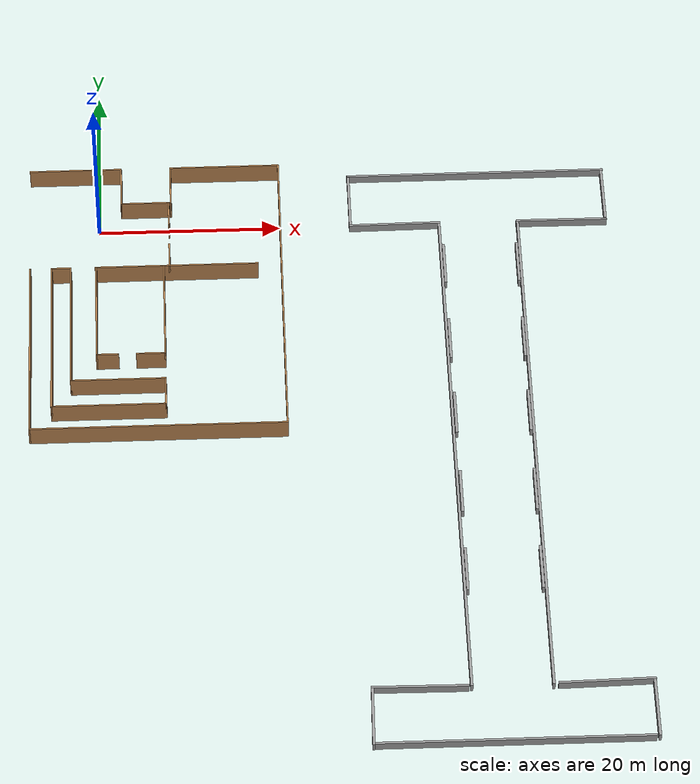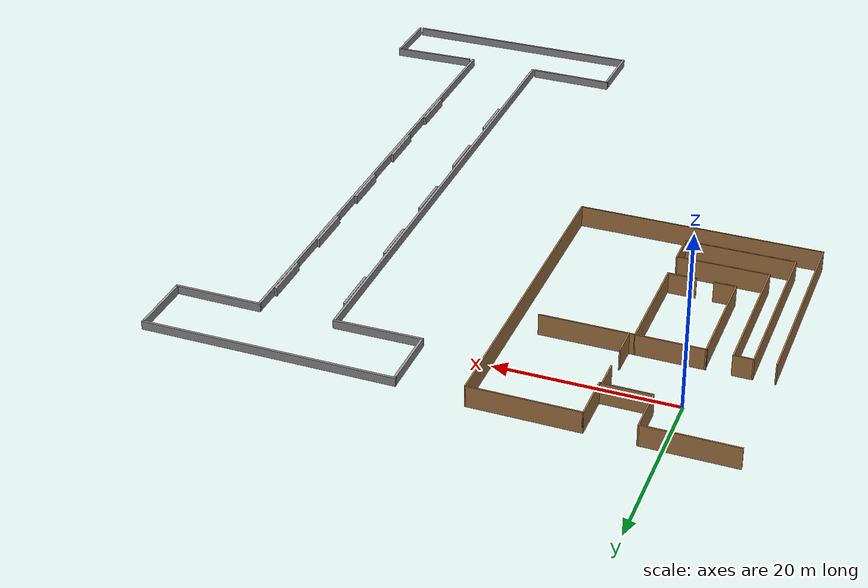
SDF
<sdf version="1.7">
 <world name="default">
  <gravity>0 0 -9.8</gravity>
  <magnetic_field>6e-06 2.3e-05 -4.2e-05</magnetic_field>
  <atmosphere type="adiabatic"/>
  <physics name="default_physics" default="0" type="ode">
   <max_step_size>0.001</max_step_size>
   <real_time_factor>1</real_time_factor>
   <real_time_update_rate>1000</real_time_update_rate>
  </physics>
  <scene>
   <ambient>0.4 0.4 0.4 1</ambient>
   <background>0.7 0.7 0.7 1</background>
   <shadows>1</shadows>
   <grid>0</grid>
   <origin_visual>0</origin_visual>
  </scene>
  <spherical_coordinates>
   <surface_model>EARTH_WGS84</surface_model>
   <latitude_deg>0</latitude_deg>
   <longitude_deg>0</longitude_deg>
   <elevation>0</elevation>
   <heading_deg>0</heading_deg>
  </spherical_coordinates>
  <light name="RetailShop_CeilingLight_001" type="point">
   <pose>2.77442 -3.62815 3.17847 0 -0 0</pose>
   <diffuse>0.5 0.5 0.5 1</diffuse>
   <specular>0.1 0.1 0.1 1</specular>
   <attenuation>
    <range>20</range>
    <constant>0.32</constant>
    <linear>0.01</linear>
    <quadratic>0.03</quadratic>
   </attenuation>
   <cast_shadows>0</cast_shadows>
   <direction>0 0 -1</direction>
   <spot><inner_angle>0</inner_angle><outer_angle>0</outer_angle><falloff>0</falloff></spot>
  </light>
  <light name="RetailShop_CeilingLight_002" type="point">
   <pose>5.38399 -5.38371 3.17847 0 -0 0</pose>
   <diffuse>0.5 0.5 0.5 1</diffuse>
   <specular>0.1 0.1 0.1 1</specular>
   <attenuation>
    <range>20</range>
    <constant>0.32</constant>
    <linear>0.01</linear>
    <quadratic>0.03</quadratic>
   </attenuation>
   <cast_shadows>0</cast_shadows>
   <direction>0 0 -1</direction>
   <spot><inner_angle>0</inner_angle><outer_angle>0</outer_angle><falloff>0</falloff></spot>
  </light>
  <light name="RetailShop_CeilingLight_003" type="point">
   <pose>5.38399 0.04192 3.17847 0 -0 0</pose>
   <diffuse>0.5 0.5 0.5 1</diffuse>
   <specular>0.1 0.1 0.1 1</specular>
   <attenuation>
    <range>20</range>
    <constant>0.32</constant>
    <linear>0.01</linear>
    <quadratic>0.03</quadratic>
   </attenuation>
   <cast_shadows>0</cast_shadows>
   <direction>0 0 -1</direction>
   <spot><inner_angle>0</inner_angle><outer_angle>0</outer_angle><falloff>0</falloff></spot>
  </light>
  <light name="RetailShop_CeilingLight_004" type="point">
   <pose>-3.21067 -5.38371 3.17847 0 -0 0</pose>
   <diffuse>0.5 0.5 0.5 1</diffuse>
   <specular>0.1 0.1 0.1 1</specular>
   <attenuation>
    <range>20</range>
    <constant>0.32</constant>
    <linear>0.01</linear>
    <quadratic>0.03</quadratic>
   </attenuation>
   <cast_shadows>0</cast_shadows>
   <direction>0 0 -1</direction>
   <spot><inner_angle>0</inner_angle><outer_angle>0</outer_angle><falloff>0</falloff></spot>
  </light>
  <light name="RetailShop_CeilingLight_005" type="point">
   <pose>-3.271 2.68593 3.17847 0 -0 0</pose>
   <diffuse>0.5 0.5 0.5 1</diffuse>
   <specular>0.1 0.1 0.1 1</specular>
   <attenuation>
    <range>20</range>
    <constant>0.32</constant>
    <linear>0.01</linear>
    <quadratic>0.03</quadratic>
   </attenuation>
   <cast_shadows>0</cast_shadows>
   <direction>0 0 -1</direction>
   <spot><inner_angle>0</inner_angle><outer_angle>0</outer_angle><falloff>0</falloff></spot>
  </light>
  <light name="RetailShop_CeilingLight_006" type="point">
   <pose>1.4932 4.69237 3.17847 0 -0 0</pose>
   <diffuse>0.5 0.5 0.5 1</diffuse>
   <specular>0.1 0.1 0.1 1</specular>
   <attenuation>
    <range>20</range>
    <constant>0.32</constant>
    <linear>0.01</linear>
    <quadratic>0.03</quadratic>
   </attenuation>
   <cast_shadows>0</cast_shadows>
   <direction>0 0 -1</direction>
   <spot><inner_angle>0</inner_angle><outer_angle>0</outer_angle><falloff>0</falloff></spot>
  </light>
  <audio><device>default</device></audio>
  <model name="wall10">
   <pose>3.93507 3.6415 0 0 -0 0</pose>
   <link name="Wall_36">
    <collision name="Wall_36_Collision">
     <geometry><box><size>5.5 0.15 2.5</size></box></geometry>
     <pose>0 0 1.25 0 -0 0</pose>
    </collision>
    <visual name="Wall_36_Visual">
     <pose>0 0 1.25 0 -0 0</pose>
     <geometry><box><size>5.5 0.15 2.5</size></box></geometry>
     <material>
      <script><uri>file://media/materials/scripts/gazebo.material</uri><name>Gazebo/Wood</name></script>
      <ambient>1 1 1 1</ambient>
     </material>
     <meta><layer>0</layer></meta>
    </visual>
    <pose>1.18507 -1.53348 0 0 -0 6e-06</pose>
   </link>
   <link name="Wall_38">
    <collision name="Wall_38_Collision">
     <geometry><box><size>5.25 0.15 2.5</size></box></geometry>
     <pose>0 0 1.25 0 -0 0</pose>
    </collision>
    <visual name="Wall_38_Visual">
     <pose>0 0 1.25 0 -0 0</pose>
     <geometry><box><size>5.25 0.15 2.5</size></box></geometry>
     <material>
      <script><uri>file://media/materials/scripts/gazebo.material</uri><name>Gazebo/Wood</name></script>
      <ambient>1 1 1 1</ambient>
     </material>
     <meta><layer>0</layer></meta>
    </visual>
    <pose>-1.49007 1.0165 0 0 -0 1.5708</pose>
   </link>
   <static>1</static>
  </model>
  <model name="bigwall1">
   <pose>10.06 -11.092 0 0 -0 0</pose>
   <link name="Wall_40">
    <collision name="Wall_40_Collision">
     <geometry><box><size>5.25 0.15 2.5</size></box></geometry>
     <pose>0 0 1.25 0 -0 0</pose>
    </collision>
    <visual name="Wall_40_Visual">
     <pose>0 0 1.25 0 -0 0</pose>
     <geometry><box><size>5.25 0.15 2.5</size></box></geometry>
     <material>
      <script><uri>file://media/materials/scripts/gazebo.material</uri><name>Gazebo/Wood</name></script>
      <ambient>1 1 1 1</ambient>
     </material>
     <meta><layer>0</layer></meta>
    </visual>
    <pose>-2.115 15.75 0 0 -0 1.5708</pose>
   </link>
   <link name="Wall_42">
    <collision name="Wall_42_Collision">
     <geometry><box><size>12.25 0.15 2.5</size></box></geometry>
     <pose>0 0 1.25 0 -0 0</pose>
    </collision>
    <visual name="Wall_42_Visual">
     <pose>0 0 1.25 0 -0 0</pose>
     <geometry><box><size>12.25 0.15 2.5</size></box></geometry>
     <material>
      <script><uri>file://media/materials/scripts/gazebo.material</uri><name>Gazebo/Wood</name></script>
      <ambient>1 1 1 1</ambient>
     </material>
     <meta><layer>0</layer></meta>
    </visual>
    <pose>3.935 18.3 0 0 -0 0</pose>
   </link>
   <link name="Wall_49">
    <collision name="Wall_49_Collision">
     <geometry><box><size>36.75 0.15 2.5</size></box></geometry>
     <pose>0 0 1.25 0 -0 0</pose>
    </collision>
    <visual name="Wall_49_Visual">
     <pose>0 0 1.25 0 -0 0</pose>
     <geometry><box><size>36.75 0.15 2.5</size></box></geometry>
     <material>
      <script><uri>file://media/materials/scripts/gazebo.material</uri><name>Gazebo/Wood</name></script>
      <ambient>1 1 1 1</ambient>
     </material>
     <meta><layer>0</layer></meta>
    </visual>
    <pose>9.985 0 0 0 -0 -1.5708</pose>
   </link>
   <static>1</static>
  </model>
  <model name="wall_40">
   <pose>-2.605 3.6415 0 0 -0 0</pose>
   <link name="Wall_96">
    <collision name="Wall_96_Collision">
     <geometry><box><size>10.25 0.15 2.5</size></box></geometry>
     <pose>0 0 1.25 0 -0 0</pose>
    </collision>
    <visual name="Wall_96_Visual">
     <pose>0 0 1.25 0 -0 0</pose>
     <geometry><box><size>10.25 0.15 2.5</size></box></geometry>
     <material>
      <script><uri>file://media/materials/scripts/gazebo.material</uri><name>Gazebo/Wood</name></script>
      <ambient>1 1 1 1</ambient>
     </material>
     <meta><layer>0</layer></meta>
    </visual>
    <pose>0 3.5665 0 0 -0 3.14159</pose>
   </link>
   <static>1</static>
  </model>
  <model name="WALL_C">
   <pose>6.195 -14.7335 0 0 -0 0</pose>
   <link name="Wall_98">
    <collision name="Wall_98_Collision">
     <geometry><box><size>27.85 0.15 2.5</size></box></geometry>
     <pose>0 0 1.25 0 -0 0</pose>
    </collision>
    <visual name="Wall_98_Visual">
     <pose>0 0 1.25 0 -0 0</pose>
     <geometry><box><size>27.85 0.15 2.5</size></box></geometry>
     <material>
      <script><uri>file://media/materials/scripts/gazebo.material</uri><name>Gazebo/Wood</name></script>
      <ambient>1 1 1 1</ambient>
     </material>
     <meta><layer>0</layer></meta>
    </visual>
    <pose>-0 -14.6585 0 0 -0 3.14159</pose>
   </link>
   <static>1</static>
  </model>
  <model name="WALL_D">
   <pose>-3.865 -14.7335 0 0 -0 0</pose>
   <link name="Wall_100">
    <collision name="Wall_100_Collision">
     <geometry><box><size>22.5 0.15 2.5</size></box></geometry>
     <pose>0 0 1.25 0 -0 0</pose>
    </collision>
    <visual name="Wall_100_Visual">
     <pose>0 0 1.25 0 -0 0</pose>
     <geometry><box><size>22.5 0.15 2.5</size></box></geometry>
     <material>
      <script><uri>file://media/materials/scripts/gazebo.material</uri><name>Gazebo/Wood</name></script>
      <ambient>1 1 1 1</ambient>
     </material>
     <meta><layer>0</layer></meta>
    </visual>
    <pose>-3.79 -3.4835 0 0 -0 1.5708</pose>
   </link>
   <static>1</static>
  </model>
  <light name="RetailShop_CeilingLight_006_clone" type="point">
   <pose>13.2087 -12.9727 3.17847 0 -0 0</pose>
   <diffuse>0.5 0.5 0.5 1</diffuse>
   <specular>0.1 0.1 0.1 1</specular>
   <direction>0 0 -1</direction>
   <attenuation>
    <range>20</range>
    <constant>0.32</constant>
    <linear>0.01</linear>
    <quadratic>0.03</quadratic>
   </attenuation>
   <cast_shadows>0</cast_shadows>
   <spot><inner_angle>0</inner_angle><outer_angle>0</outer_angle><falloff>0</falloff></spot>
  </light>
  <light name="RetailShop_CeilingLight_001_clone_clone" type="point">
   <pose>13.1607 -16.7337 3.17847 0 -0 0</pose>
   <diffuse>0.5 0.5 0.5 1</diffuse>
   <specular>0.1 0.1 0.1 1</specular>
   <direction>0 0 -1</direction>
   <attenuation>
    <range>20</range>
    <constant>0.32</constant>
    <linear>0.01</linear>
    <quadratic>0.03</quadratic>
   </attenuation>
   <cast_shadows>0</cast_shadows>
   <spot><inner_angle>0</inner_angle><outer_angle>0</outer_angle><falloff>0</falloff></spot>
  </light>
  <light name="RetailShop_CeilingLight_002_clone_clone" type="point">
   <pose>13.1202 -20.5297 3.17847 0 -0 0</pose>
   <diffuse>0.5 0.5 0.5 1</diffuse>
   <specular>0.1 0.1 0.1 1</specular>
   <direction>0 0 -1</direction>
   <attenuation>
    <range>20</range>
    <constant>0.32</constant>
    <linear>0.01</linear>
    <quadratic>0.03</quadratic>
   </attenuation>
   <cast_shadows>0</cast_shadows>
   <spot><inner_angle>0</inner_angle><outer_angle>0</outer_angle><falloff>0</falloff></spot>
  </light>
  <light name="RetailShop_CeilingLight_003_clone_clone" type="point">
   <pose>13.1202 -24.511 3.17847 0 -0 0</pose>
   <diffuse>0.5 0.5 0.5 1</diffuse>
   <specular>0.1 0.1 0.1 1</specular>
   <direction>0 0 -1</direction>
   <attenuation>
    <range>20</range>
    <constant>0.32</constant>
    <linear>0.01</linear>
    <quadratic>0.03</quadratic>
   </attenuation>
   <cast_shadows>0</cast_shadows>
   <spot><inner_angle>0</inner_angle><outer_angle>0</outer_angle><falloff>0</falloff></spot>
  </light>
  <model name="WALL_G">
   <pose>6.097 -3.5585 0 0 -0 0</pose>
   <link name="Wall_0">
    <collision name="Wall_0_Collision">
     <geometry><box><size>2.15 0.15 2.5</size></box></geometry>
     <pose>0 0 1.25 0 -0 0</pose>
    </collision>
    <visual name="Wall_0_Visual">
     <pose>0 0 1.25 0 -0 0</pose>
     <geometry><box><size>2.15 0.15 2.5</size></box></geometry>
     <material>
      <script><uri>file://media/materials/scripts/gazebo.material</uri><name>Gazebo/Wood</name></script>
      <ambient>1 1 1 1</ambient>
     </material>
     <meta><layer>0</layer></meta>
    </visual>
    <pose>-10.297 -3.4835 0 0 -0 0</pose>
   </link>
   <link name="Wall_9">
    <collision name="Wall_9_Collision">
     <geometry><box><size>18 0.15 2.5</size></box></geometry>
     <pose>0 0 1.25 0 -0 0</pose>
    </collision>
    <visual name="Wall_9_Visual">
     <pose>0 0 1.25 0 -0 0</pose>
     <geometry><box><size>18 0.15 2.5</size></box></geometry>
     <material>
      <script><uri>file://media/materials/scripts/gazebo.material</uri><name>Gazebo/Wood</name></script>
      <ambient>1 1 1 1</ambient>
     </material>
     <meta><layer>0</layer></meta>
    </visual>
    <pose>2.372 -3.4835 0 0 -0 0</pose>
   </link>
   <static>1</static>
  </model>
  <model name="WALL_F">
   <pose>3.885 -2.467 0 0 -0 0</pose>
   <link name="Wall_11">
    <collision name="Wall_11_Collision">
     <geometry><box><size>3.25 0.15 2.5</size></box></geometry>
     <pose>0 0 1.25 0 -0 0</pose>
    </collision>
    <visual name="Wall_11_Visual">
     <pose>0 0 1.25 0 -0 0</pose>
     <geometry><box><size>3.25 0.15 2.5</size></box></geometry>
     <material>
      <script><uri>file://media/materials/scripts/gazebo.material</uri><name>Gazebo/Wood</name></script>
      <ambient>1 1 1 1</ambient>
     </material>
     <meta><layer>0</layer></meta>
    </visual>
    <pose>3.81 -3.025 0 0 -0 1.5708</pose>
   </link>
   <link name="Wall_13">
    <collision name="Wall_13_Collision">
     <geometry><box><size>3.25 0.15 2.5</size></box></geometry>
     <pose>0 0 1.25 0 -0 0</pose>
    </collision>
    <visual name="Wall_13_Visual">
     <pose>0 0 1.25 0 -0 0</pose>
     <geometry><box><size>3.25 0.15 2.5</size></box></geometry>
     <material>
      <script><uri>file://media/materials/scripts/gazebo.material</uri><name>Gazebo/Wood</name></script>
      <ambient>1 1 1 1</ambient>
     </material>
     <meta><layer>0</layer></meta>
    </visual>
    <pose>3.81 3.025 0 0 -0 -1.5708</pose>
   </link>
   <static>1</static>
  </model>
  <model name="WALL_H1">
   <pose>0.875 -13.2335 0 0 -0 0</pose>
   <link name="Wall_21">
    <collision name="Wall_21_Collision">
     <geometry><box><size>19.5 0.15 2.5</size></box></geometry>
     <pose>0 0 1.25 0 -0 0</pose>
    </collision>
    <visual name="Wall_21_Visual">
     <pose>0 0 1.25 0 -0 0</pose>
     <geometry><box><size>19.5 0.15 2.5</size></box></geometry>
     <material>
      <script><uri>file://media/materials/scripts/gazebo.material</uri><name>Gazebo/Wood</name></script>
      <ambient>1 1 1 1</ambient>
     </material>
     <meta><layer>0</layer></meta>
    </visual>
    <pose>-6.175 -3.4835 0 0 -0 -1.5708</pose>
   </link>
   <link name="Wall_23">
    <collision name="Wall_23_Collision">
     <geometry><box><size>12.5 0.15 2.5</size></box></geometry>
     <pose>0 0 1.25 0 -0 0</pose>
    </collision>
    <visual name="Wall_23_Visual">
     <pose>0 0 1.25 0 -0 0</pose>
     <geometry><box><size>12.5 0.15 2.5</size></box></geometry>
     <material>
      <script><uri>file://media/materials/scripts/gazebo.material</uri><name>Gazebo/Wood</name></script>
      <ambient>1 1 1 1</ambient>
     </material>
     <meta><layer>0</layer></meta>
    </visual>
    <pose>1e-06 -13.1585 0 0 -0 0</pose>
   </link>
   <static>1</static>
  </model>
  <model name="WALL_I_1">
   <pose>1.925 -13.2335 0 0 -0 0</pose>
   <link name="Wall_27">
    <collision name="Wall_27_Collision">
     <geometry><box><size>16 0.15 2.5</size></box></geometry>
     <pose>0 0 1.25 0 -0 0</pose>
    </collision>
    <visual name="Wall_27_Visual">
     <pose>0 0 1.25 0 -0 0</pose>
     <geometry><box><size>16 0.15 2.5</size></box></geometry>
     <material>
      <script><uri>file://media/materials/scripts/gazebo.material</uri><name>Gazebo/Wood</name></script>
      <ambient>1 1 1 1</ambient>
     </material>
     <meta><layer>0</layer></meta>
    </visual>
    <pose>-5.125 -1.7335 0 0 -0 -1.5708</pose>
   </link>
   <link name="Wall_30">
    <collision name="Wall_30_Collision">
     <geometry><box><size>10.4 0.15 2.5</size></box></geometry>
     <pose>0 0 1.25 0 -0 0</pose>
    </collision>
    <visual name="Wall_30_Visual">
     <pose>0 0 1.25 0 -0 0</pose>
     <geometry><box><size>10.4 0.15 2.5</size></box></geometry>
     <material>
      <script><uri>file://media/materials/scripts/gazebo.material</uri><name>Gazebo/Wood</name></script>
      <ambient>1 1 1 1</ambient>
     </material>
     <meta><layer>0</layer></meta>
    </visual>
    <pose>0 -9.6585 0 0 -0 0</pose>
   </link>
   <link name="Wall_32">
    <collision name="Wall_32_Collision">
     <geometry><box><size>3.65 0.15 2.5</size></box></geometry>
     <pose>0 0 1.25 0 -0 0</pose>
    </collision>
    <visual name="Wall_32_Visual">
     <pose>0 0 1.25 0 -0 0</pose>
     <geometry><box><size>3.65 0.15 2.5</size></box></geometry>
     <material>
      <script><uri>file://media/materials/scripts/gazebo.material</uri><name>Gazebo/Wood</name></script>
      <ambient>1 1 1 1</ambient>
     </material>
     <meta><layer>0</layer></meta>
    </visual>
    <pose>5.125 -11.4085 0 0 -0 -1.5708</pose>
   </link>
   <static>1</static>
  </model>
  <model name="WALL_T1">
   <pose>3.325 -9.7336 0 0 -0 0</pose>
   <link name="Wall_35">
    <collision name="Wall_35_Collision">
     <geometry><box><size>12.5004 0.15 2.5</size></box></geometry>
     <pose>0 0 1.25 0 -0 0</pose>
    </collision>
    <visual name="Wall_35_Visual">
     <pose>0 0 1.25 0 -0 0</pose>
     <geometry><box><size>12.5004 0.15 2.5</size></box></geometry>
     <material>
      <script><uri>file://media/materials/scripts/gazebo.material</uri><name>Gazebo/Wood</name></script>
      <ambient>1 1 1 1</ambient>
     </material>
     <meta><layer>0</layer></meta>
    </visual>
    <pose>-3.725 -3.4834 0 0 -0 -1.5708</pose>
   </link>
   <link name="Wall_40">
    <collision name="Wall_40_Collision">
     <geometry><box><size>2.5 0.15 2.5</size></box></geometry>
     <pose>0 0 1.25 0 -0 0</pose>
    </collision>
    <visual name="Wall_40_Visual">
     <pose>0 0 1.25 0 -0 0</pose>
     <geometry><box><size>2.5 0.15 2.5</size></box></geometry>
     <material>
      <script><uri>file://media/materials/scripts/gazebo.material</uri><name>Gazebo/Wood</name></script>
      <ambient>1 1 1 1</ambient>
     </material>
     <meta><layer>0</layer></meta>
    </visual>
    <pose>-2.55 -9.6584 0 0 -0 0</pose>
   </link>
   <link name="Wall_42">
    <collision name="Wall_42_Collision">
     <geometry><box><size>3.235 0.15 2.5</size></box></geometry>
     <pose>0 0 1.25 0 -0 0</pose>
    </collision>
    <visual name="Wall_42_Visual">
     <pose>0 0 1.25 0 -0 0</pose>
     <geometry><box><size>3.235 0.15 2.5</size></box></geometry>
     <material>
      <script><uri>file://media/materials/scripts/gazebo.material</uri><name>Gazebo/Wood</name></script>
      <ambient>1 1 1 1</ambient>
     </material>
     <meta><layer>0</layer></meta>
    </visual>
    <pose>2.1825 -9.6584 0 0 -0 0</pose>
   </link>
   <link name="Wall_44">
    <collision name="Wall_44_Collision">
     <geometry><box><size>12.5 0.15 2.5</size></box></geometry>
     <pose>0 0 1.25 0 -0 0</pose>
    </collision>
    <visual name="Wall_44_Visual">
     <pose>0 0 1.25 0 -0 0</pose>
     <geometry><box><size>12.5 0.15 2.5</size></box></geometry>
     <material>
      <script><uri>file://media/materials/scripts/gazebo.material</uri><name>Gazebo/Wood</name></script>
      <ambient>1 1 1 1</ambient>
     </material>
     <meta><layer>0</layer></meta>
    </visual>
    <pose>3.725 -3.4834 0 0 -0 1.5708</pose>
   </link>
   <static>1</static>
  </model>
  <light name="RetailShop_CeilingLight_004_clone" type="point">
   <pose>-6.13266 -17.1599 3.17847 0 -0 0</pose>
   <diffuse>0.5 0.5 0.5 1</diffuse>
   <specular>0.1 0.1 0.1 1</specular>
   <direction>0 0 -1</direction>
   <attenuation>
    <range>20</range>
    <constant>0.32</constant>
    <linear>0.01</linear>
    <quadratic>0.03</quadratic>
   </attenuation>
   <cast_shadows>0</cast_shadows>
   <spot><inner_angle>0</inner_angle><outer_angle>0</outer_angle><falloff>0</falloff></spot>
  </light>
  <light name="RetailShop_CeilingLight_005_clone" type="point">
   <pose>0.627461 -27.5951 3.17847 0 -0 0</pose>
   <diffuse>0.5 0.5 0.5 1</diffuse>
   <specular>0.1 0.1 0.1 1</specular>
   <direction>0 0 -1</direction>
   <attenuation>
    <range>20</range>
    <constant>0.32</constant>
    <linear>0.01</linear>
    <quadratic>0.03</quadratic>
   </attenuation>
   <cast_shadows>0</cast_shadows>
   <spot><inner_angle>0</inner_angle><outer_angle>0</outer_angle><falloff>0</falloff></spot>
  </light>
  <light name="RetailShop_CeilingLight_006_clone_0" type="point">
   <pose>-1.27399 -20.3289 3.17847 0 -0 0</pose>
   <diffuse>0.5 0.5 0.5 1</diffuse>
   <specular>0.1 0.1 0.1 1</specular>
   <direction>0 0 -1</direction>
   <attenuation>
    <range>20</range>
    <constant>0.32</constant>
    <linear>0.01</linear>
    <quadratic>0.03</quadratic>
   </attenuation>
   <cast_shadows>0</cast_shadows>
   <spot><inner_angle>0</inner_angle><outer_angle>0</outer_angle><falloff>0</falloff></spot>
  </light>
  <light name="RetailShop_CeilingLight_004_clone_clone" type="point">
   <pose>3.45814 -13.6533 3.17847 0 -0 0</pose>
   <diffuse>0.5 0.5 0.5 1</diffuse>
   <specular>0.1 0.1 0.1 1</specular>
   <direction>0 0 -1</direction>
   <attenuation>
    <range>20</range>
    <constant>0.32</constant>
    <linear>0.01</linear>
    <quadratic>0.03</quadratic>
   </attenuation>
   <cast_shadows>0</cast_shadows>
   <spot><inner_angle>0</inner_angle><outer_angle>0</outer_angle><falloff>0</falloff></spot>
  </light>
  <light name="RetailShop_CeilingLight_005_clone_clone" type="point">
   <pose>13.5136 -0.725148 3.17847 0 -0 0</pose>
   <diffuse>0.5 0.5 0.5 1</diffuse>
   <specular>0.1 0.1 0.1 1</specular>
   <direction>0 0 -1</direction>
   <attenuation>
    <range>20</range>
    <constant>0.32</constant>
    <linear>0.01</linear>
    <quadratic>0.03</quadratic>
   </attenuation>
   <cast_shadows>0</cast_shadows>
   <spot><inner_angle>0</inner_angle><outer_angle>0</outer_angle><falloff>0</falloff></spot>
  </light>
  <model name="unit_box">
   <pose>42.1295 6.56144 0.513382 0 -0 0.00037</pose>
   <link name="link">
    <inertial>
     <mass>1</mass>
     <inertia>
      <ixx>0.166667</ixx>
      <ixy>0</ixy>
      <ixz>0</ixz>
      <iyy>0.166667</iyy>
      <iyz>0</iyz>
      <izz>0.166667</izz>
     </inertia>
    </inertial>
    <collision name="collision"><geometry><box><size>28.8041 0.235025 1</size></box></geometry></collision>
    <visual name="visual">
     <geometry><box><size>28.8041 0.235025 1</size></box></geometry>
     <material>
      <script><name>Gazebo/Grey</name><uri>file://media/materials/scripts/gazebo.material</uri></script>
     </material>
    </visual>
   </link>
  </model>
  <model name="unit_box_0">
   <pose>56.3424 2.93448 0.513382 0 -0 -8e-06</pose>
   <link name="link">
    <inertial>
     <mass>1</mass>
     <inertia>
      <ixx>0.166667</ixx>
      <ixy>0</ixy>
      <ixz>0</ixz>
      <iyy>0.166667</iyy>
      <iyz>0</iyz>
      <izz>0.166667</izz>
     </inertia>
    </inertial>
    <collision name="collision"><geometry><box><size>0.276088 6.97492 1</size></box></geometry></collision>
    <visual name="visual">
     <geometry><box><size>0.276088 6.97492 1</size></box></geometry>
     <material>
      <script><name>Gazebo/Grey</name><uri>file://media/materials/scripts/gazebo.material</uri></script>
     </material>
    </visual>
   </link>
  </model>
  <model name="unit_box_clone">
   <pose>51.4106 -0.672109 0.513382 -4e-06 1e-06 -0.006279</pose>
   <link name="link">
    <inertial>
     <mass>1</mass>
     <inertia>
      <ixx>0.166667</ixx>
      <ixy>0</ixy>
      <ixz>0</ixz>
      <iyy>0.166667</iyy>
      <iyz>0</iyz>
      <izz>0.166667</izz>
     </inertia>
    </inertial>
    <collision name="collision"><geometry><box><size>10.1262 0.235025 1</size></box></geometry></collision>
    <visual name="visual">
     <geometry><box><size>10.1262 0.235025 1</size></box></geometry>
     <material>
      <script><name>Gazebo/Grey</name><uri>file://media/materials/scripts/gazebo.material</uri></script>
     </material>
    </visual>
   </link>
  </model>
  <model name="unit_box_0_clone">
   <pose>27.8823 2.91816 0.513382 0 -0 -0.000197</pose>
   <link name="link">
    <inertial>
     <mass>1</mass>
     <inertia>
      <ixx>0.166667</ixx>
      <ixy>0</ixy>
      <ixz>0</ixz>
      <iyy>0.166667</iyy>
      <iyz>0</iyz>
      <izz>0.166667</izz>
     </inertia>
    </inertial>
    <collision name="collision"><geometry><box><size>0.276088 6.97492 1</size></box></geometry></collision>
    <visual name="visual">
     <geometry><box><size>0.276088 6.97492 1</size></box></geometry>
     <material>
      <script><name>Gazebo/Grey</name><uri>file://media/materials/scripts/gazebo.material</uri></script>
     </material>
    </visual>
   </link>
  </model>
  <model name="unit_box_clone_clone">
   <pose>32.8374 -0.639709 0.513382 0 -0 0.009818</pose>
   <link name="link">
    <inertial>
     <mass>1</mass>
     <inertia>
      <ixx>0.166667</ixx>
      <ixy>0</ixy>
      <ixz>0</ixz>
      <iyy>0.166667</iyy>
      <iyz>0</iyz>
      <izz>0.166667</izz>
     </inertia>
    </inertial>
    <collision name="collision"><geometry><box><size>10.1262 0.235025 1</size></box></geometry></collision>
    <visual name="visual">
     <geometry><box><size>10.1262 0.235025 1</size></box></geometry>
     <material>
      <script><name>Gazebo/Grey</name><uri>file://media/materials/scripts/gazebo.material</uri></script>
     </material>
    </visual>
   </link>
  </model>
  <model name="unit_box_0_clone_0_clone">
   <pose>37.8435 -32.0514 0.513369 1e-06 4.1e-05 0.002796</pose>
   <link name="link">
    <inertial>
     <mass>1</mass>
     <inertia>
      <ixx>0.166667</ixx>
      <ixy>0</ixy>
      <ixz>0</ixz>
      <iyy>0.166667</iyy>
      <iyz>0</iyz>
      <izz>0.166667</izz>
     </inertia>
    </inertial>
    <collision name="collision"><geometry><box><size>0.276088 62.6754 1</size></box></geometry></collision>
    <visual name="visual">
     <geometry><box><size>0.276088 62.6754 1</size></box></geometry>
     <material>
      <script><name>Gazebo/Grey</name><uri>file://media/materials/scripts/gazebo.material</uri></script>
     </material>
    </visual>
   </link>
  </model>
  <model name="unit_box_0_clone_0_clone_clone">
   <pose>46.4603 -32.0971 0.513388 0 4.8e-05 -0.001802</pose>
   <link name="link">
    <inertial>
     <mass>1</mass>
     <inertia>
      <ixx>0.166667</ixx>
      <ixy>0</ixy>
      <ixz>0</ixz>
      <iyy>0.166667</iyy>
      <iyz>0</iyz>
      <izz>0.166667</izz>
     </inertia>
    </inertial>
    <collision name="collision"><geometry><box><size>0.276088 62.6753 1</size></box></geometry></collision>
    <visual name="visual">
     <geometry><box><size>0.276088 62.6753 1</size></box></geometry>
     <material>
      <script><name>Gazebo/Grey</name><uri>file://media/materials/scripts/gazebo.material</uri></script>
     </material>
    </visual>
   </link>
  </model>
  <model name="unit_box_clone_clone_clone">
   <pose>32.5816 -63.282 0.513382 -0 -0 -0.011299</pose>
   <link name="link">
    <inertial>
     <mass>1</mass>
     <inertia>
      <ixx>0.166667</ixx>
      <ixy>0</ixy>
      <ixz>0</ixz>
      <iyy>0.166667</iyy>
      <iyz>0</iyz>
      <izz>0.166667</izz>
     </inertia>
    </inertial>
    <collision name="collision"><geometry><box><size>10.1262 0.235025 1</size></box></geometry></collision>
    <visual name="visual">
     <geometry><box><size>10.1262 0.235025 1</size></box></geometry>
     <material>
      <script><name>Gazebo/Grey</name><uri>file://media/materials/scripts/gazebo.material</uri></script>
     </material>
    </visual>
   </link>
  </model>
  <model name="unit_box_clone_clone_clone_0">
   <pose>51.9326 -63.2071 0.513382 0 -0 0.023308</pose>
   <link name="link">
    <inertial>
     <mass>1</mass>
     <inertia>
      <ixx>0.166667</ixx>
      <ixy>0</ixy>
      <ixz>0</ixz>
      <iyy>0.166667</iyy>
      <iyz>0</iyz>
      <izz>0.166667</izz>
     </inertia>
    </inertial>
    <collision name="collision"><geometry><box><size>10.1262 0.235025 1</size></box></geometry></collision>
    <visual name="visual">
     <geometry><box><size>10.1262 0.235025 1</size></box></geometry>
     <material>
      <script><name>Gazebo/Grey</name><uri>file://media/materials/scripts/gazebo.material</uri></script>
     </material>
    </visual>
   </link>
  </model>
  <model name="unit_box_0_clone_clone">
   <pose>27.6231 -66.8322 0.513382 0 -0 -0.019036</pose>
   <link name="link">
    <inertial>
     <mass>1</mass>
     <inertia>
      <ixx>0.166667</ixx>
      <ixy>0</ixy>
      <ixz>0</ixz>
      <iyy>0.166667</iyy>
      <iyz>0</iyz>
      <izz>0.166667</izz>
     </inertia>
    </inertial>
    <collision name="collision"><geometry><box><size>0.276088 6.97492 1</size></box></geometry></collision>
    <visual name="visual">
     <geometry><box><size>0.276088 6.97492 1</size></box></geometry>
     <material>
      <script><name>Gazebo/Grey</name><uri>file://media/materials/scripts/gazebo.material</uri></script>
     </material>
    </visual>
   </link>
  </model>
  <model name="unit_box_0_clone_clone_0">
   <pose>56.8222 -66.7014 0.513382 0 -0 -0.000365</pose>
   <link name="link">
    <inertial>
     <mass>1</mass>
     <inertia>
      <ixx>0.166667</ixx>
      <ixy>0</ixy>
      <ixz>0</ixz>
      <iyy>0.166667</iyy>
      <iyz>0</iyz>
      <izz>0.166667</izz>
     </inertia>
    </inertial>
    <collision name="collision"><geometry><box><size>0.276088 6.97492 1</size></box></geometry></collision>
    <visual name="visual">
     <geometry><box><size>0.276088 6.97492 1</size></box></geometry>
     <material>
      <script><name>Gazebo/Grey</name><uri>file://media/materials/scripts/gazebo.material</uri></script>
     </material>
    </visual>
   </link>
  </model>
  <model name="unit_box_clone_0">
   <pose>42.1023 -70.1551 0.513398 -0.000133 -0 0.000281</pose>
   <link name="link">
    <inertial>
     <mass>1</mass>
     <inertia>
      <ixx>0.166667</ixx>
      <ixy>0</ixy>
      <ixz>0</ixz>
      <iyy>0.166667</iyy>
      <iyz>0</iyz>
      <izz>0.166667</izz>
     </inertia>
    </inertial>
    <collision name="collision"><geometry><box><size>28.8041 0.235025 1</size></box></geometry></collision>
    <visual name="visual">
     <geometry><box><size>28.8041 0.235025 1</size></box></geometry>
     <material>
      <script><name>Gazebo/Grey</name><uri>file://media/materials/scripts/gazebo.material</uri></script>
     </material>
    </visual>
   </link>
  </model>
  <light name="user_point_light_0" type="point">
   <pose>42.5469 2.99911 1 0 -0 0</pose>
   <diffuse>0.5 0.5 0.5 1</diffuse>
   <specular>0.1 0.1 0.1 1</specular>
   <attenuation>
    <range>20</range>
    <constant>0.5</constant>
    <linear>0.01</linear>
    <quadratic>0.001</quadratic>
   </attenuation>
   <cast_shadows>0</cast_shadows>
   <direction>0 0 -1</direction>
   <spot><inner_angle>0</inner_angle><outer_angle>0</outer_angle><falloff>0</falloff></spot>
  </light>
  <light name="user_point_light_1" type="point">
   <pose>42.0313 -27.1002 1 0 -0 0</pose>
   <diffuse>0.5 0.5 0.5 1</diffuse>
   <specular>0.1 0.1 0.1 1</specular>
   <attenuation>
    <range>20</range>
    <constant>0.5</constant>
    <linear>0.01</linear>
    <quadratic>0.001</quadratic>
   </attenuation>
   <cast_shadows>0</cast_shadows>
   <direction>0 0 -1</direction>
   <spot><inner_angle>0</inner_angle><outer_angle>0</outer_angle><falloff>0</falloff></spot>
  </light>
  <light name="user_point_light_2" type="point">
   <pose>42.3187 -49.1011 1 0 -0 0</pose>
   <diffuse>0.5 0.5 0.5 1</diffuse>
   <specular>0.1 0.1 0.1 1</specular>
   <attenuation>
    <range>20</range>
    <constant>0.5</constant>
    <linear>0.01</linear>
    <quadratic>0.001</quadratic>
   </attenuation>
   <cast_shadows>0</cast_shadows>
   <direction>0 0 -1</direction>
   <spot><inner_angle>0</inner_angle><outer_angle>0</outer_angle><falloff>0</falloff></spot>
  </light>
  <light name="user_point_light_3" type="point">
   <pose>41.6641 -66.5933 1 0 -0 0</pose>
   <diffuse>0.5 0.5 0.5 1</diffuse>
   <specular>0.1 0.1 0.1 1</specular>
   <attenuation>
    <range>20</range>
    <constant>0.5</constant>
    <linear>0.01</linear>
    <quadratic>0.001</quadratic>
   </attenuation>
   <cast_shadows>0</cast_shadows>
   <direction>0 0 -1</direction>
   <spot><inner_angle>0</inner_angle><outer_angle>0</outer_angle><falloff>0</falloff></spot>
  </light>
  <light name="user_point_light_4" type="point">
   <pose>50.507 -66.5043 1 0 -0 0</pose>
   <diffuse>0.5 0.5 0.5 1</diffuse>
   <specular>0.1 0.1 0.1 1</specular>
   <attenuation>
    <range>20</range>
    <constant>0.5</constant>
    <linear>0.01</linear>
    <quadratic>0.001</quadratic>
   </attenuation>
   <cast_shadows>0</cast_shadows>
   <direction>0 0 -1</direction>
   <spot><inner_angle>0</inner_angle><outer_angle>0</outer_angle><falloff>0</falloff></spot>
  </light>
  <light name="user_point_light_5" type="point">
   <pose>32.0362 -66.8005 1 0 -0 0</pose>
   <diffuse>0.5 0.5 0.5 1</diffuse>
   <specular>0.1 0.1 0.1 1</specular>
   <attenuation>
    <range>20</range>
    <constant>0.5</constant>
    <linear>0.01</linear>
    <quadratic>0.001</quadratic>
   </attenuation>
   <cast_shadows>0</cast_shadows>
   <direction>0 0 -1</direction>
   <spot><inner_angle>0</inner_angle><outer_angle>0</outer_angle><falloff>0</falloff></spot>
  </light>
  <light name="user_point_light_6" type="point">
   <pose>42.0916 -56.6378 1 0 -0 0</pose>
   <diffuse>0.5 0.5 0.5 1</diffuse>
   <specular>0.1 0.1 0.1 1</specular>
   <attenuation>
    <range>20</range>
    <constant>0.5</constant>
    <linear>0.01</linear>
    <quadratic>0.001</quadratic>
   </attenuation>
   <cast_shadows>0</cast_shadows>
   <direction>0 0 -1</direction>
   <spot><inner_angle>0</inner_angle><outer_angle>0</outer_angle><falloff>0</falloff></spot>
  </light>
  <light name="user_point_light_7" type="point">
   <pose>42.4547 -42.2162 1 0 -0 0</pose>
   <diffuse>0.5 0.5 0.5 1</diffuse>
   <specular>0.1 0.1 0.1 1</specular>
   <attenuation>
    <range>20</range>
    <constant>0.5</constant>
    <linear>0.01</linear>
    <quadratic>0.001</quadratic>
   </attenuation>
   <cast_shadows>0</cast_shadows>
   <direction>0 0 -1</direction>
   <spot><inner_angle>0</inner_angle><outer_angle>0</outer_angle><falloff>0</falloff></spot>
  </light>
  <light name="user_point_light_8" type="point">
   <pose>42.4493 -35.4183 1 0 -0 0</pose>
   <diffuse>0.5 0.5 0.5 1</diffuse>
   <specular>0.1 0.1 0.1 1</specular>
   <attenuation>
    <range>20</range>
    <constant>0.5</constant>
    <linear>0.01</linear>
    <quadratic>0.001</quadratic>
   </attenuation>
   <cast_shadows>0</cast_shadows>
   <direction>0 0 -1</direction>
   <spot><inner_angle>0</inner_angle><outer_angle>0</outer_angle><falloff>0</falloff></spot>
  </light>
  <light name="user_point_light_9" type="point">
   <pose>42.2182 -17.7531 1 0 -0 0</pose>
   <diffuse>0.5 0.5 0.5 1</diffuse>
   <specular>0.1 0.1 0.1 1</specular>
   <attenuation>
    <range>20</range>
    <constant>0.5</constant>
    <linear>0.01</linear>
    <quadratic>0.001</quadratic>
   </attenuation>
   <cast_shadows>0</cast_shadows>
   <direction>0 0 -1</direction>
   <spot><inner_angle>0</inner_angle><outer_angle>0</outer_angle><falloff>0</falloff></spot>
  </light>
  <light name="user_point_light_10" type="point">
   <pose>42.1906 -10.7859 1 0 -0 0</pose>
   <diffuse>0.5 0.5 0.5 1</diffuse>
   <specular>0.1 0.1 0.1 1</specular>
   <attenuation>
    <range>20</range>
    <constant>0.5</constant>
    <linear>0.01</linear>
    <quadratic>0.001</quadratic>
   </attenuation>
   <cast_shadows>0</cast_shadows>
   <direction>0 0 -1</direction>
   <spot><inner_angle>0</inner_angle><outer_angle>0</outer_angle><falloff>0</falloff></spot>
  </light>
  <light name="user_point_light_11" type="point">
   <pose>50.3294 3.10912 1 0 -0 0</pose>
   <diffuse>0.5 0.5 0.5 1</diffuse>
   <specular>0.1 0.1 0.1 1</specular>
   <attenuation>
    <range>20</range>
    <constant>0.5</constant>
    <linear>0.01</linear>
    <quadratic>0.001</quadratic>
   </attenuation>
   <cast_shadows>0</cast_shadows>
   <direction>0 0 -1</direction>
   <spot><inner_angle>0</inner_angle><outer_angle>0</outer_angle><falloff>0</falloff></spot>
  </light>
  <light name="user_point_light_12" type="point">
   <pose>33.4042 2.90402 1 0 -0 0</pose>
   <diffuse>0.5 0.5 0.5 1</diffuse>
   <specular>0.1 0.1 0.1 1</specular>
   <attenuation>
    <range>20</range>
    <constant>0.5</constant>
    <linear>0.01</linear>
    <quadratic>0.001</quadratic>
   </attenuation>
   <cast_shadows>0</cast_shadows>
   <direction>0 0 -1</direction>
   <spot><inner_angle>0</inner_angle><outer_angle>0</outer_angle><falloff>0</falloff></spot>
  </light>
  <model name="unit_box_1">
   <pose>46.2037 -6.60811 0.513382 0 -1e-06 -0.000122</pose>
   <link name="link">
    <inertial>
     <mass>1</mass>
     <inertia>
      <ixx>0.166667</ixx>
      <ixy>0</ixy>
      <ixz>0</ixz>
      <iyy>0.166667</iyy>
      <iyz>0</iyz>
      <izz>0.166667</izz>
     </inertia>
    </inertial>
    <collision name="collision"><geometry><box><size>0.295335 5.47724 1</size></box></geometry></collision>
    <visual name="visual">
     <geometry><box><size>0.295335 5.47724 1</size></box></geometry>
     <material>
      <script><name>Gazebo/Grey</name><uri>file://media/materials/scripts/gazebo.material</uri></script>
     </material>
    </visual>
   </link>
  </model>
  <model name="unit_box_1_clone">
   <pose>38.0782 -6.57416 0.513382 0 -0 7.8e-05</pose>
   <link name="link">
    <inertial>
     <mass>1</mass>
     <inertia>
      <ixx>0.166667</ixx>
      <ixy>0</ixy>
      <ixz>0</ixz>
      <iyy>0.166667</iyy>
      <iyz>0</iyz>
      <izz>0.166667</izz>
     </inertia>
    </inertial>
    <collision name="collision"><geometry><box><size>0.295335 5.47724 1</size></box></geometry></collision>
    <visual name="visual">
     <geometry><box><size>0.295335 5.47724 1</size></box></geometry>
     <material>
      <script><name>Gazebo/Grey</name><uri>file://media/materials/scripts/gazebo.material</uri></script>
     </material>
    </visual>
   </link>
  </model>
  <model name="unit_box_1_clone_0">
   <pose>46.1974 -17.2517 0.513382 0 -0 -0.001566</pose>
   <link name="link">
    <inertial>
     <mass>1</mass>
     <inertia>
      <ixx>0.166667</ixx>
      <ixy>0</ixy>
      <ixz>0</ixz>
      <iyy>0.166667</iyy>
      <iyz>0</iyz>
      <izz>0.166667</izz>
     </inertia>
    </inertial>
    <collision name="collision"><geometry><box><size>0.295335 5.47724 1</size></box></geometry></collision>
    <visual name="visual">
     <geometry><box><size>0.295335 5.47724 1</size></box></geometry>
     <material>
      <script><name>Gazebo/Grey</name><uri>file://media/materials/scripts/gazebo.material</uri></script>
     </material>
    </visual>
   </link>
  </model>
  <model name="unit_box_1_clone_1">
   <pose>38.1077 -17.2296 0.513382 0 -0 -0.000422</pose>
   <link name="link">
    <inertial>
     <mass>1</mass>
     <inertia>
      <ixx>0.166667</ixx>
      <ixy>0</ixy>
      <ixz>0</ixz>
      <iyy>0.166667</iyy>
      <iyz>0</iyz>
      <izz>0.166667</izz>
     </inertia>
    </inertial>
    <collision name="collision"><geometry><box><size>0.295335 5.47724 1</size></box></geometry></collision>
    <visual name="visual">
     <geometry><box><size>0.295335 5.47724 1</size></box></geometry>
     <material>
      <script><name>Gazebo/Grey</name><uri>file://media/materials/scripts/gazebo.material</uri></script>
     </material>
    </visual>
   </link>
  </model>
  <model name="unit_box_1_clone_2">
   <pose>46.1802 -27.5133 0.513378 4e-06 -0 -0.000887</pose>
   <link name="link">
    <inertial>
     <mass>1</mass>
     <inertia>
      <ixx>0.166667</ixx>
      <ixy>0</ixy>
      <ixz>0</ixz>
      <iyy>0.166667</iyy>
      <iyz>0</iyz>
      <izz>0.166667</izz>
     </inertia>
    </inertial>
    <collision name="collision"><geometry><box><size>0.295335 5.47724 1</size></box></geometry></collision>
    <visual name="visual">
     <geometry><box><size>0.295335 5.47724 1</size></box></geometry>
     <material>
      <script><name>Gazebo/Grey</name><uri>file://media/materials/scripts/gazebo.material</uri></script>
     </material>
    </visual>
   </link>
  </model>
  <model name="unit_box_1_clone_3">
   <pose>38.1724 -27.5499 0.513382 -0 1e-06 -5.8e-05</pose>
   <link name="link">
    <inertial>
     <mass>1</mass>
     <inertia>
      <ixx>0.166667</ixx>
      <ixy>0</ixy>
      <ixz>0</ixz>
      <iyy>0.166667</iyy>
      <iyz>0</iyz>
      <izz>0.166667</izz>
     </inertia>
    </inertial>
    <collision name="collision"><geometry><box><size>0.295335 5.47724 1</size></box></geometry></collision>
    <visual name="visual">
     <geometry><box><size>0.295335 5.47724 1</size></box></geometry>
     <material>
      <script><name>Gazebo/Grey</name><uri>file://media/materials/scripts/gazebo.material</uri></script>
     </material>
    </visual>
   </link>
  </model>
  <model name="unit_box_1_clone_4">
   <pose>46.1547 -38.1612 0.513382 0 -0 -1.8e-05</pose>
   <link name="link">
    <inertial>
     <mass>1</mass>
     <inertia>
      <ixx>0.166667</ixx>
      <ixy>0</ixy>
      <ixz>0</ixz>
      <iyy>0.166667</iyy>
      <iyz>0</iyz>
      <izz>0.166667</izz>
     </inertia>
    </inertial>
    <collision name="collision"><geometry><box><size>0.295335 5.47724 1</size></box></geometry></collision>
    <visual name="visual">
     <geometry><box><size>0.295335 5.47724 1</size></box></geometry>
     <material>
      <script><name>Gazebo/Grey</name><uri>file://media/materials/scripts/gazebo.material</uri></script>
     </material>
    </visual>
   </link>
  </model>
  <model name="unit_box_1_clone_5">
   <pose>38.2174 -38.2216 0.513382 0 -0 -2e-05</pose>
   <link name="link">
    <inertial>
     <mass>1</mass>
     <inertia>
      <ixx>0.166667</ixx>
      <ixy>0</ixy>
      <ixz>0</ixz>
      <iyy>0.166667</iyy>
      <iyz>0</iyz>
      <izz>0.166667</izz>
     </inertia>
    </inertial>
    <collision name="collision"><geometry><box><size>0.295335 5.47724 1</size></box></geometry></collision>
    <visual name="visual">
     <geometry><box><size>0.295335 5.47724 1</size></box></geometry>
     <material>
      <script><name>Gazebo/Grey</name><uri>file://media/materials/scripts/gazebo.material</uri></script>
     </material>
    </visual>
   </link>
  </model>
  <model name="unit_box_1_clone_6">
   <pose>46.1278 -48.4282 0.513379 4e-06 -6e-06 -4.1e-05</pose>
   <link name="link">
    <inertial>
     <mass>1</mass>
     <inertia>
      <ixx>0.166667</ixx>
      <ixy>0</ixy>
      <ixz>0</ixz>
      <iyy>0.166667</iyy>
      <iyz>0</iyz>
      <izz>0.166667</izz>
     </inertia>
    </inertial>
    <collision name="collision"><geometry><box><size>0.295335 5.47724 1</size></box></geometry></collision>
    <visual name="visual">
     <geometry><box><size>0.295335 5.47724 1</size></box></geometry>
     <material>
      <script><name>Gazebo/Grey</name><uri>file://media/materials/scripts/gazebo.material</uri></script>
     </material>
    </visual>
   </link>
  </model>
  <model name="unit_box_1_clone_7">
   <pose>38.1973 -48.4795 0.513382 0 -1e-06 -3.2e-05</pose>
   <link name="link">
    <inertial>
     <mass>1</mass>
     <inertia>
      <ixx>0.166667</ixx>
      <ixy>0</ixy>
      <ixz>0</ixz>
      <iyy>0.166667</iyy>
      <iyz>0</iyz>
      <izz>0.166667</izz>
     </inertia>
    </inertial>
    <collision name="collision"><geometry><box><size>0.295335 5.47724 1</size></box></geometry></collision>
    <visual name="visual">
     <geometry><box><size>0.295335 5.47724 1</size></box></geometry>
     <material>
      <script><name>Gazebo/Grey</name><uri>file://media/materials/scripts/gazebo.material</uri></script>
     </material>
    </visual>
   </link>
  </model>
 </world>
</sdf>
